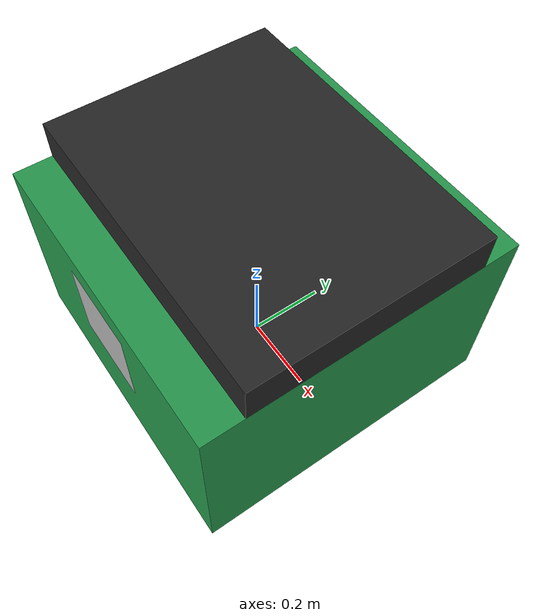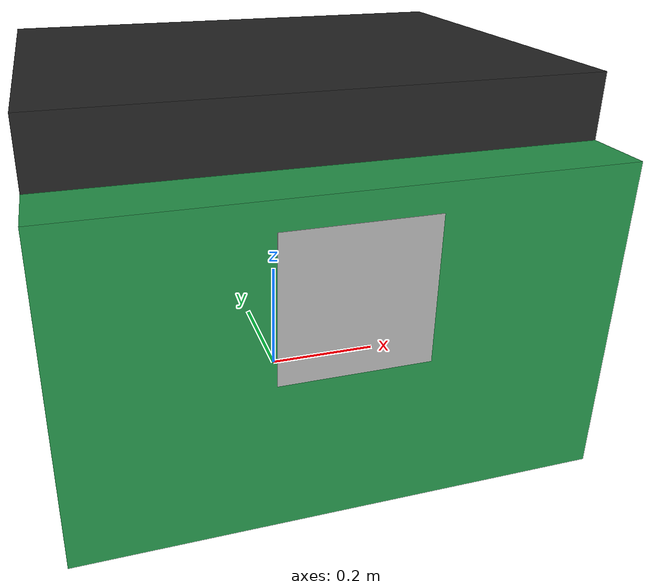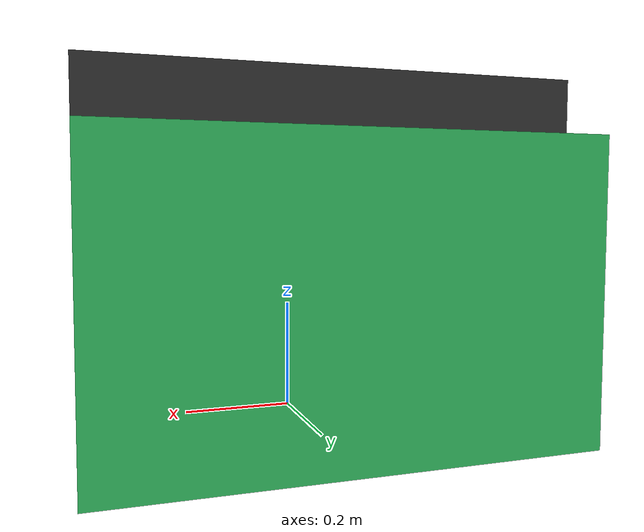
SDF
<?xml version="1.0"?>
<!-- SPDX-License-Identifier: Apache-2.0 -->
<sdf version="1.6"><model name="inspection_station"><static>true</static><link name="station_link">
      <collision name="body"><pose>0 0 0.25 0 0 0</pose><geometry><box><size>0.8 0.8 0.5</size></box></geometry></collision>
      <visual name="body"><pose>0 0 0.25 0 0 0</pose><geometry><box><size>0.8 0.8 0.5</size></box></geometry><material><ambient>0.15 0.6 0.3 1</ambient><diffuse>0.15 0.6 0.3 1</diffuse></material></visual>
      <collision name="conveyor"><pose>0 0 0.55 0 0 0</pose><geometry><box><size>0.8 0.6 0.1</size></box></geometry></collision>
      <visual name="conveyor"><pose>0 0 0.55 0 0 0</pose><geometry><box><size>0.8 0.6 0.1</size></box></geometry><material><ambient>0.15 0.15 0.15 1</ambient><diffuse>0.15 0.15 0.15 1</diffuse></material></visual>
      <!-- Gazebo renders the unit plane in XY; rotate its +Z normal toward -Y. -->
      <visual name="marker_plane"><pose>0 -0.405 0.35 1.5707963267948966 0 0</pose><geometry><plane><normal>0 0 1</normal><size>0.22 0.22</size></plane></geometry><material><script><uri>model://inspection_station/materials/scripts</uri><uri>model://inspection_station/materials/textures</uri><name>Factory/InspectionMarker</name></script></material></visual>
</link></model></sdf>
